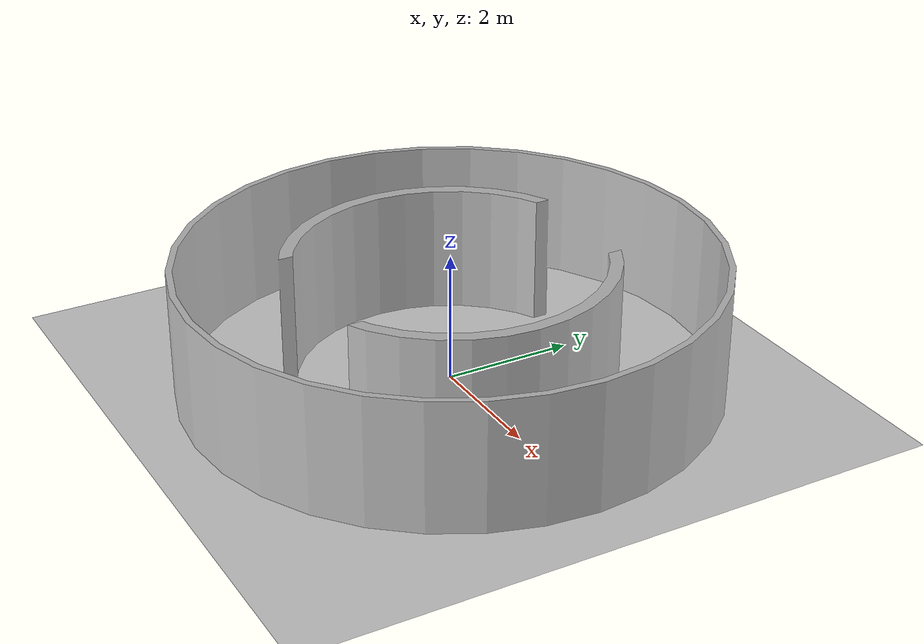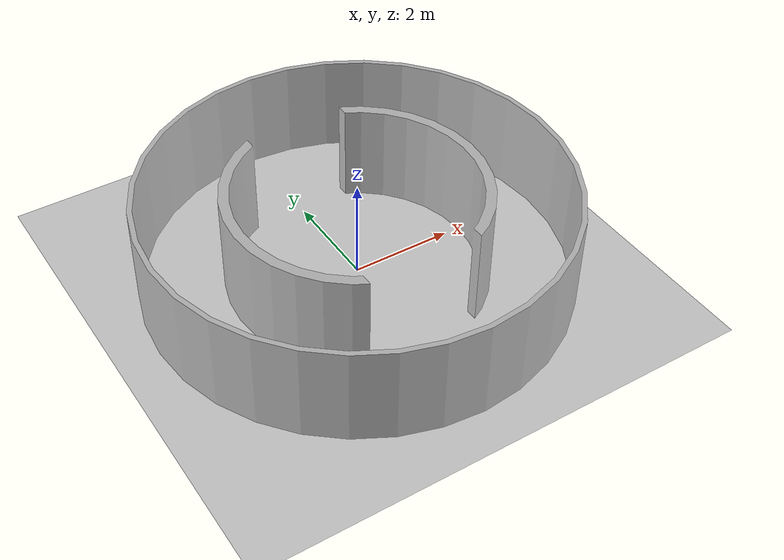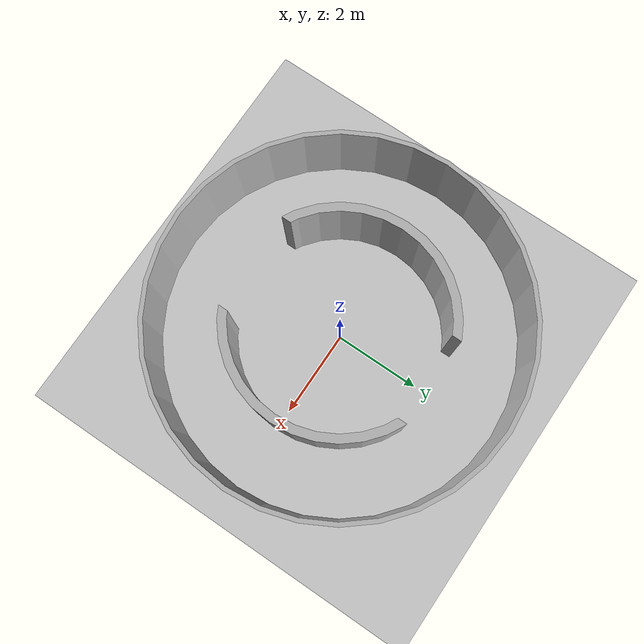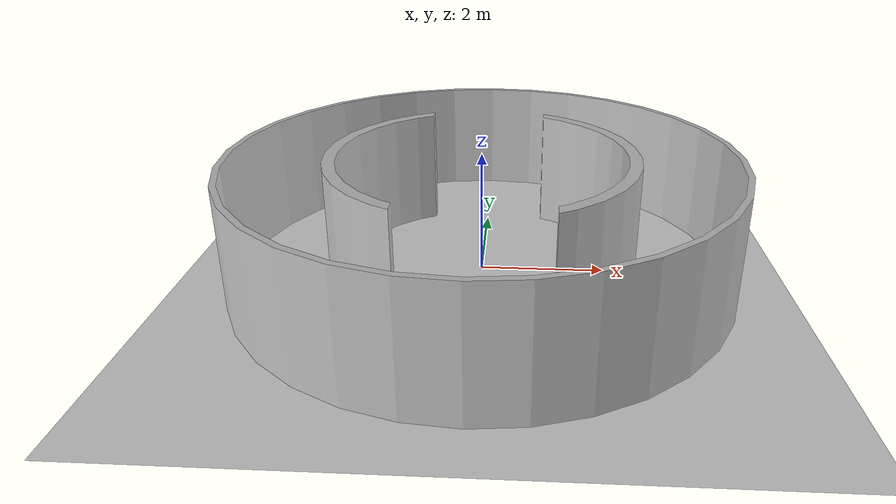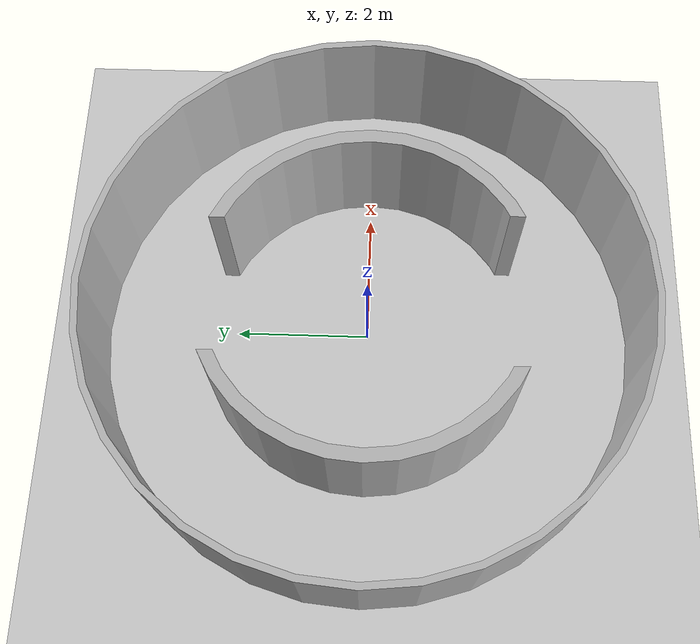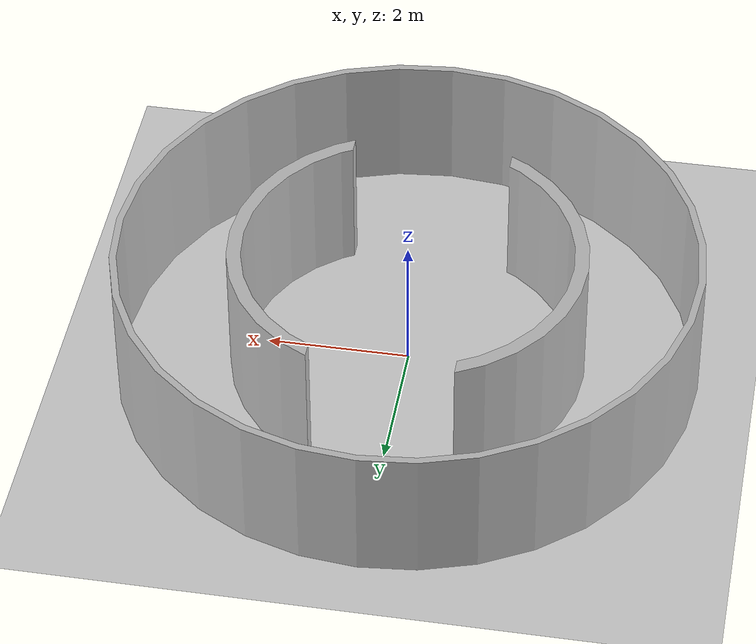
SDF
<?xml version="1.0"?>
<sdf version="1.6">
    <world name="default">
        <include>
            <uri>model://sun</uri>
        </include>
        <include>
            <uri>model://library_groundplane</uri>
        </include>
        <include>
            <uri>model://mz_library</uri>
        </include>
    </world>
</sdf>

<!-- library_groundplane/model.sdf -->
<sdf version="1.6">
  <model name="library_groundplane">
    <static>true</static>
    <link name="link">
      <collision name="library_groundplane_collision">
        <geometry>
          <plane>
            <normal>0 0 1</normal>
            <size>30 30</size>
          </plane>
        </geometry>
        <surface>
          <friction>
            <ode>
              <mu>100</mu>
              <mu2>50</mu2>
            </ode>
          </friction>
        </surface>
      </collision>
      <visual name="library_groundplane_visual">
        <cast_shadows>false</cast_shadows>
        <geometry>
          <plane>
            <normal>0 0 1</normal>
            <size>30 30</size>
          </plane>
        </geometry>
        <material>
          <script>
            <uri>model://library_groundplane/materials/scripts</uri>
            <uri>model://library_groundplane/materials/textures</uri>
            <name>library_groundplane/Image </name>
          </script>
        </material>
      </visual>
    </link>
  </model>
</sdf>

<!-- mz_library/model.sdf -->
<sdf version='1.6'>
    <model name="mz_library">
        <pose>0 0 0 0 0 0</pose>
        <static>true</static>
        <link name="libro_scene">
            <inertial>
                <mass>15</mass>
                <inertia>
                    <ixx>0.0</ixx>
                    <ixy>0.0</ixy>
                    <ixz>0.0</ixz>
                    <iyy>0.0</iyy>
                    <iyz>0.0</iyz>
                    <izz>0.0</izz>
                </inertia>
            </inertial>
            <collision name="collision">
                <pose>0 0 0 0 0 0</pose>
                <geometry>
                    <mesh>
                        <uri>model://mz_library/meshes/library.dae</uri>
                    </mesh>
                </geometry>
            </collision>
            <visual name="visual">
                <pose>0 0 0 0 0 0</pose>
                <geometry>
                    <mesh>
                        <uri>model://mz_library/meshes/library.dae</uri>
                    </mesh>
                </geometry>
            </visual>
        </link>
    </model>
</sdf>
